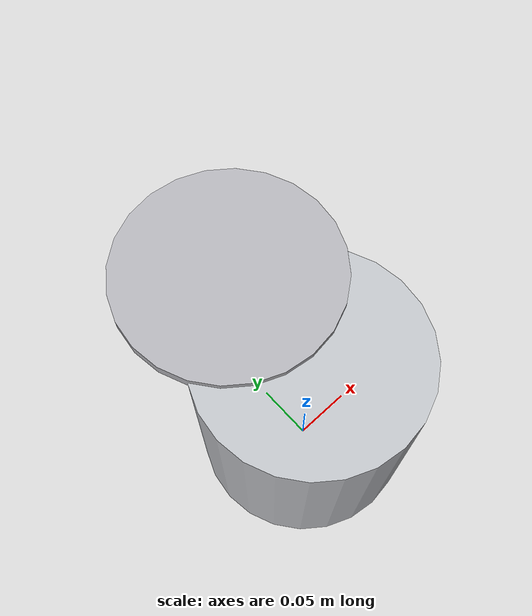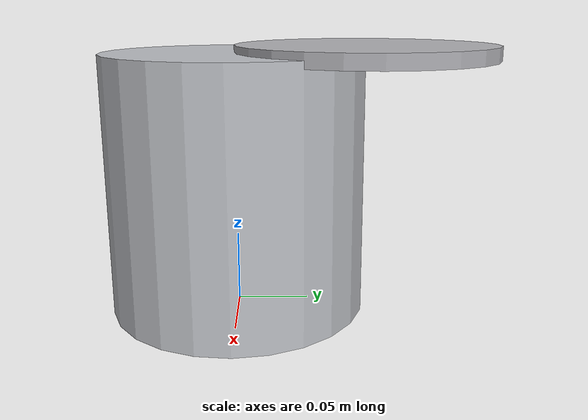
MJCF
<?xml version="1.0" encoding="utf-8"?>
<mujoco model="pasteurizer">
  <compiler angle="radian" autolimits="true"/>
  <default>
    <default class="body"><geom contype="1" conaffinity="1"/></default>
  </default>
  <worldbody>
    <body name="base">
      <geom type="cylinder" size="0.09 0.09" pos="0 0 0.09" rgba="0.75 0.76 0.78 1" class="body"/>
      <body name="tank_lid" pos="0 0.09 0.18">
        <joint name="tank_lid_joint" type="hinge" axis="1 0 0" range="0 1.8" damping="0.5" frictionloss="0.3"/>
  <geom type="cylinder" size="0.09 0.005" pos="0 0 0" rgba="0.7 0.7 0.72 1" class="body"/>
      </body>
    </body>
  </worldbody>
</mujoco>
